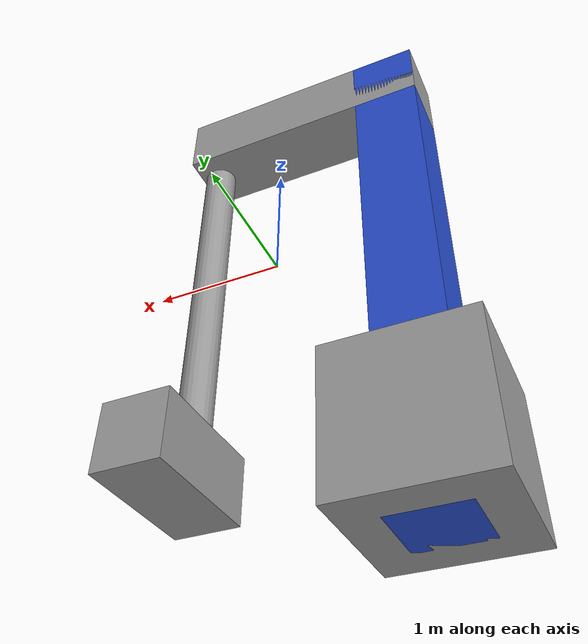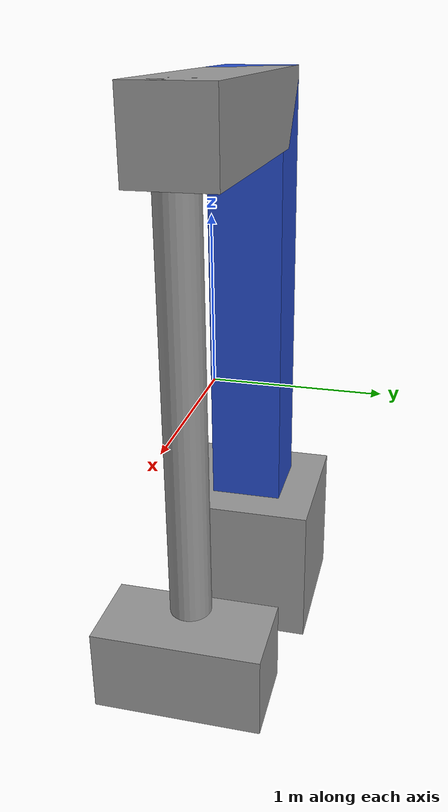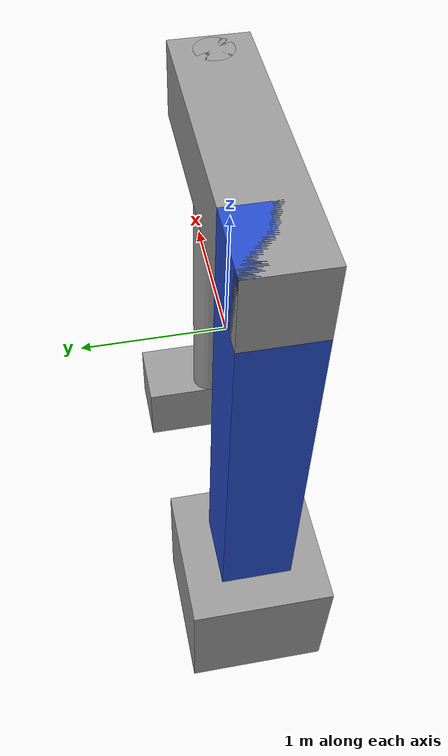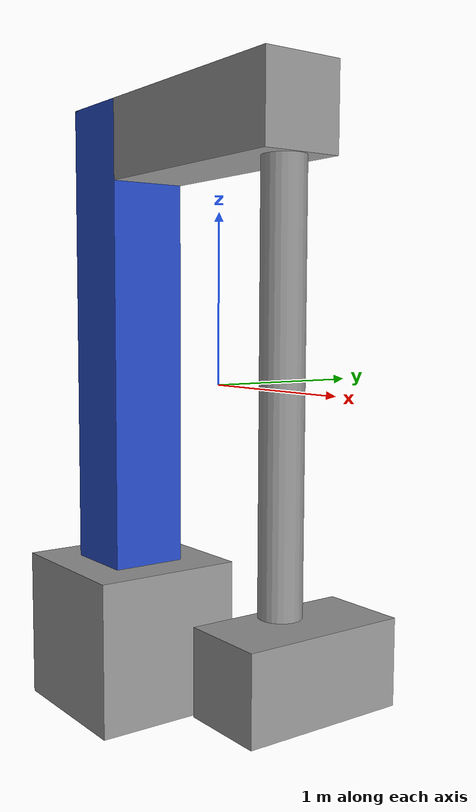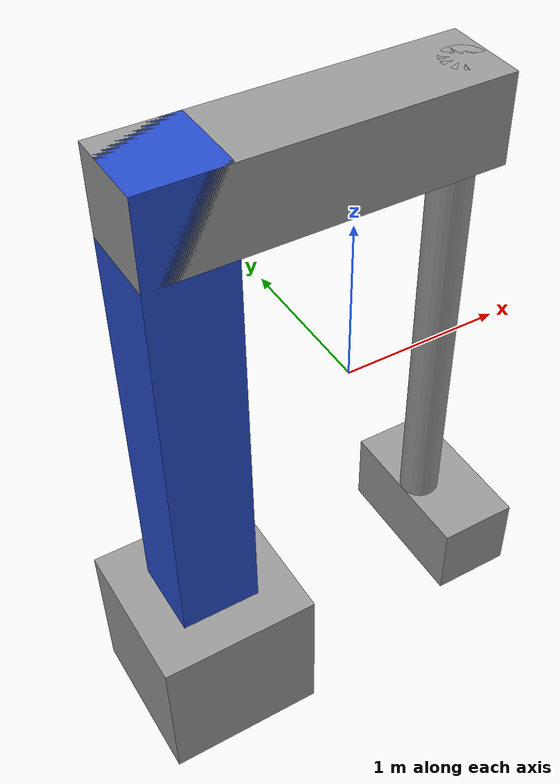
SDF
<?xml version='1.0'?>
<sdf version='1.6'>
  <model name='Ball_Kicker'>
    <link name='link_0'>
      <inertial>
        <mass>1</mass>
        <inertia>
          <ixx>0.166667</ixx>
          <ixy>0</ixy>
          <ixz>0</ixz>
          <iyy>0.166667</iyy>
          <iyz>0</iyz>
          <izz>0.166667</izz>
        </inertia>
        <pose frame=''>0 0 0 0 -0 0</pose>
      </inertial>
      <pose frame=''>-1.02375 0.001875 -0.25 0 -0 0</pose>
      <gravity>1</gravity>
      <self_collide>0</self_collide>
      <kinematic>0</kinematic>
      <enable_wind>0</enable_wind>
      <visual name='visual'>
        <pose frame=''>0 0 0 0 -0 0</pose>
        <geometry>
          <box>
            <size>0.5 0.5 4</size>
          </box>
        </geometry>
        <material>
          <lighting>1</lighting>
          <script>
            <uri>file://media/materials/scripts/gazebo.material</uri>
            <name>Gazebo/Blue</name>
          </script>
          <shader type='vertex'>
            <normal_map>__default__</normal_map>
          </shader>
          <ambient>0.3 0.3 0.3 1</ambient>
          <diffuse>0.7 0.7 0.7 1</diffuse>
          <specular>0.01 0.01 0.01 1</specular>
          <emissive>0 0 0 1</emissive>
        </material>
        <transparency>0</transparency>
        <cast_shadows>1</cast_shadows>
      </visual>
      <collision name='collision'>
        <laser_retro>0</laser_retro>
        <max_contacts>10</max_contacts>
        <pose frame=''>0 0 0 0 -0 0</pose>
        <geometry>
          <box>
            <size>0.5 0.5 4</size>
          </box>
        </geometry>
        <surface>
          <friction>
            <ode>
              <mu>1</mu>
              <mu2>1</mu2>
              <fdir1>0 0 0</fdir1>
              <slip1>0</slip1>
              <slip2>0</slip2>
            </ode>
            <torsional>
              <coefficient>1</coefficient>
              <patch_radius>0</patch_radius>
              <surface_radius>0</surface_radius>
              <use_patch_radius>1</use_patch_radius>
              <ode>
                <slip>0</slip>
              </ode>
            </torsional>
          </friction>
          <bounce>
            <restitution_coefficient>0</restitution_coefficient>
            <threshold>1e+06</threshold>
          </bounce>
          <contact>
            <collide_without_contact>0</collide_without_contact>
            <collide_without_contact_bitmask>1</collide_without_contact_bitmask>
            <collide_bitmask>1</collide_bitmask>
            <ode>
              <soft_cfm>0</soft_cfm>
              <soft_erp>0.2</soft_erp>
              <kp>1e+13</kp>
              <kd>1</kd>
              <max_vel>0.01</max_vel>
              <min_depth>0</min_depth>
            </ode>
            <bullet>
              <split_impulse>1</split_impulse>
              <split_impulse_penetration_threshold>-0.01</split_impulse_penetration_threshold>
              <soft_cfm>0</soft_cfm>
              <soft_erp>0.2</soft_erp>
              <kp>1e+13</kp>
              <kd>1</kd>
            </bullet>
          </contact>
        </surface>
      </collision>
    </link>
    <link name='link_0_0'>
      <inertial>
        <mass>7870</mass>
        <inertia>
          <ixx>1311.67</ixx>
          <ixy>0</ixy>
          <ixz>0</ixz>
          <iyy>1311.67</iyy>
          <iyz>0</iyz>
          <izz>1311.67</izz>
        </inertia>
        <pose frame=''>0 0 0 0 -0 0</pose>
      </inertial>
      <pose frame=''>-1.02375 0.001875 -1.75 0 -0 0</pose>
      <gravity>1</gravity>
      <self_collide>0</self_collide>
      <kinematic>0</kinematic>
      <enable_wind>0</enable_wind>
      <visual name='visual'>
        <pose frame=''>0 0 0 0 -0 0</pose>
        <geometry>
          <box>
            <size>1 1 1</size>
          </box>
        </geometry>
        <material>
          <lighting>1</lighting>
          <script>
            <uri>file://media/materials/scripts/gazebo.material</uri>
            <name>Gazebo/Grey</name>
          </script>
          <shader type='vertex'>
            <normal_map>__default__</normal_map>
          </shader>
          <emissive>0 0 0 1</emissive>
        </material>
        <transparency>0</transparency>
        <cast_shadows>1</cast_shadows>
      </visual>
      <collision name='collision'>
        <laser_retro>0</laser_retro>
        <max_contacts>10</max_contacts>
        <pose frame=''>0 0 0 0 -0 0</pose>
        <geometry>
          <box>
            <size>1 1 1</size>
          </box>
        </geometry>
        <surface>
          <friction>
            <ode>
              <mu>1</mu>
              <mu2>1</mu2>
              <fdir1>0 0 0</fdir1>
              <slip1>0</slip1>
              <slip2>0</slip2>
            </ode>
            <torsional>
              <coefficient>1</coefficient>
              <patch_radius>0</patch_radius>
              <surface_radius>0</surface_radius>
              <use_patch_radius>1</use_patch_radius>
              <ode>
                <slip>0</slip>
              </ode>
            </torsional>
          </friction>
          <bounce>
            <restitution_coefficient>0</restitution_coefficient>
            <threshold>1e+06</threshold>
          </bounce>
          <contact>
            <collide_without_contact>0</collide_without_contact>
            <collide_without_contact_bitmask>1</collide_without_contact_bitmask>
            <collide_bitmask>1</collide_bitmask>
            <ode>
              <soft_cfm>0</soft_cfm>
              <soft_erp>0.2</soft_erp>
              <kp>1e+13</kp>
              <kd>1</kd>
              <max_vel>0.01</max_vel>
              <min_depth>0</min_depth>
            </ode>
            <bullet>
              <split_impulse>1</split_impulse>
              <split_impulse_penetration_threshold>-0.01</split_impulse_penetration_threshold>
              <soft_cfm>0</soft_cfm>
              <soft_erp>0.2</soft_erp>
              <kp>1e+13</kp>
              <kd>1</kd>
            </bullet>
          </contact>
        </surface>
      </collision>
    </link>
    <link name='link_1'>
      <inertial>
        <mass>1</mass>
        <inertia>
          <ixx>0.166667</ixx>
          <ixy>0</ixy>
          <ixz>0</ixz>
          <iyy>0.166667</iyy>
          <iyz>0</iyz>
          <izz>0.166667</izz>
        </inertia>
        <pose frame=''>0 0 0 0 -0 0</pose>
      </inertial>
      <pose frame=''>-0.273752 0.001875 1.5 0 -0 0</pose>
      <gravity>1</gravity>
      <self_collide>0</self_collide>
      <kinematic>0</kinematic>
      <enable_wind>0</enable_wind>
      <visual name='visual'>
        <pose frame=''>0 0 0 0 -0 0</pose>
        <geometry>
          <box>
            <size>2 0.5 0.5</size>
          </box>
        </geometry>
        <material>
          <lighting>1</lighting>
          <script>
            <uri>file://media/materials/scripts/gazebo.material</uri>
            <name>Gazebo/Grey</name>
          </script>
          <shader type='vertex'>
            <normal_map>__default__</normal_map>
          </shader>
          <ambient>0.3 0.3 0.3 1</ambient>
          <diffuse>0.7 0.7 0.7 1</diffuse>
          <specular>0.01 0.01 0.01 1</specular>
          <emissive>0 0 0 1</emissive>
        </material>
        <transparency>0</transparency>
        <cast_shadows>1</cast_shadows>
      </visual>
      <collision name='collision'>
        <laser_retro>0</laser_retro>
        <max_contacts>10</max_contacts>
        <pose frame=''>0 0 0 0 -0 0</pose>
        <geometry>
          <box>
            <size>2 0.5 0.5</size>
          </box>
        </geometry>
        <surface>
          <friction>
            <ode>
              <mu>1</mu>
              <mu2>1</mu2>
              <fdir1>0 0 0</fdir1>
              <slip1>0</slip1>
              <slip2>0</slip2>
            </ode>
            <torsional>
              <coefficient>1</coefficient>
              <patch_radius>0</patch_radius>
              <surface_radius>0</surface_radius>
              <use_patch_radius>1</use_patch_radius>
              <ode>
                <slip>0</slip>
              </ode>
            </torsional>
          </friction>
          <bounce>
            <restitution_coefficient>0</restitution_coefficient>
            <threshold>1e+06</threshold>
          </bounce>
          <contact>
            <collide_without_contact>0</collide_without_contact>
            <collide_without_contact_bitmask>1</collide_without_contact_bitmask>
            <collide_bitmask>1</collide_bitmask>
            <ode>
              <soft_cfm>0</soft_cfm>
              <soft_erp>0.2</soft_erp>
              <kp>1e+13</kp>
              <kd>1</kd>
              <max_vel>0.01</max_vel>
              <min_depth>0</min_depth>
            </ode>
            <bullet>
              <split_impulse>1</split_impulse>
              <split_impulse_penetration_threshold>-0.01</split_impulse_penetration_threshold>
              <soft_cfm>0</soft_cfm>
              <soft_erp>0.2</soft_erp>
              <kp>1e+13</kp>
              <kd>1</kd>
            </bullet>
          </contact>
        </surface>
      </collision>
    </link>
    <link name='link_2'>
      <inertial>
        <mass>1</mass>
        <inertia>
          <ixx>0.145833</ixx>
          <ixy>0</ixy>
          <ixz>0</ixz>
          <iyy>0.145833</iyy>
          <iyz>0</iyz>
          <izz>0.125</izz>
        </inertia>
        <pose frame=''>0 0 0 0 -0 0</pose>
      </inertial>
      <pose frame=''>0.586248 -0.005625 0.25 0 -0 0</pose>
      <gravity>1</gravity>
      <self_collide>0</self_collide>
      <kinematic>0</kinematic>
      <enable_wind>0</enable_wind>
      <visual name='visual'>
        <pose frame=''>0 0 0 0 -0 0</pose>
        <geometry>
          <cylinder>
            <radius>0.125</radius>
            <length>3</length>
          </cylinder>
        </geometry>
        <material>
          <lighting>1</lighting>
          <script>
            <uri>file://media/materials/scripts/gazebo.material</uri>
            <name>Gazebo/Grey</name>
          </script>
          <shader type='vertex'>
            <normal_map>__default__</normal_map>
          </shader>
          <ambient>0.3 0.3 0.3 1</ambient>
          <diffuse>0.7 0.7 0.7 1</diffuse>
          <specular>0.01 0.01 0.01 1</specular>
          <emissive>0 0 0 1</emissive>
        </material>
        <transparency>0</transparency>
        <cast_shadows>1</cast_shadows>
      </visual>
      <collision name='collision'>
        <laser_retro>0</laser_retro>
        <max_contacts>10</max_contacts>
        <pose frame=''>0 0 0 0 -0 0</pose>
        <geometry>
          <cylinder>
            <radius>0.125</radius>
            <length>3</length>
          </cylinder>
        </geometry>
        <surface>
          <friction>
            <ode>
              <mu>1</mu>
              <mu2>1</mu2>
              <fdir1>0 0 0</fdir1>
              <slip1>0</slip1>
              <slip2>0</slip2>
            </ode>
            <torsional>
              <coefficient>1</coefficient>
              <patch_radius>0</patch_radius>
              <surface_radius>0</surface_radius>
              <use_patch_radius>1</use_patch_radius>
              <ode>
                <slip>0</slip>
              </ode>
            </torsional>
          </friction>
          <bounce>
            <restitution_coefficient>0</restitution_coefficient>
            <threshold>1e+06</threshold>
          </bounce>
          <contact>
            <collide_without_contact>0</collide_without_contact>
            <collide_without_contact_bitmask>1</collide_without_contact_bitmask>
            <collide_bitmask>1</collide_bitmask>
            <ode>
              <soft_cfm>0</soft_cfm>
              <soft_erp>0.2</soft_erp>
              <kp>1e+13</kp>
              <kd>1</kd>
              <max_vel>0.01</max_vel>
              <min_depth>0</min_depth>
            </ode>
            <bullet>
              <split_impulse>1</split_impulse>
              <split_impulse_penetration_threshold>-0.01</split_impulse_penetration_threshold>
              <soft_cfm>0</soft_cfm>
              <soft_erp>0.2</soft_erp>
              <kp>1e+13</kp>
              <kd>1</kd>
            </bullet>
          </contact>
        </surface>
      </collision>
    </link>
    <link name='link_3'>
      <inertial>
        <mass>1</mass>
        <inertia>
          <ixx>0.166667</ixx>
          <ixy>0</ixy>
          <ixz>0</ixz>
          <iyy>0.166667</iyy>
          <iyz>0</iyz>
          <izz>0.166667</izz>
        </inertia>
        <pose frame=''>0 0 0 0 -0 0</pose>
      </inertial>
      <pose frame=''>0.711248 0.001875 -1.5 0 -0 0</pose>
      <gravity>1</gravity>
      <self_collide>0</self_collide>
      <kinematic>0</kinematic>
      <enable_wind>0</enable_wind>
      <visual name='visual'>
        <pose frame=''>0 0 0 0 -0 0</pose>
        <geometry>
          <box>
            <size>0.5 1 0.5</size>
          </box>
        </geometry>
        <material>
          <lighting>1</lighting>
          <script>
            <uri>file://media/materials/scripts/gazebo.material</uri>
            <name>Gazebo/Grey</name>
          </script>
          <shader type='vertex'>
            <normal_map>__default__</normal_map>
          </shader>
          <ambient>0.3 0.3 0.3 1</ambient>
          <diffuse>0.7 0.7 0.7 1</diffuse>
          <specular>0.01 0.01 0.01 1</specular>
          <emissive>0 0 0 1</emissive>
        </material>
        <transparency>0</transparency>
        <cast_shadows>1</cast_shadows>
      </visual>
      <collision name='collision'>
        <laser_retro>0</laser_retro>
        <max_contacts>10</max_contacts>
        <pose frame=''>0 0 0 0 -0 0</pose>
        <geometry>
          <box>
            <size>0.5 1 0.5</size>
          </box>
        </geometry>
        <surface>
          <friction>
            <ode>
              <mu>1</mu>
              <mu2>1</mu2>
              <fdir1>0 0 0</fdir1>
              <slip1>0</slip1>
              <slip2>0</slip2>
            </ode>
            <torsional>
              <coefficient>1</coefficient>
              <patch_radius>0</patch_radius>
              <surface_radius>0</surface_radius>
              <use_patch_radius>1</use_patch_radius>
              <ode>
                <slip>0</slip>
              </ode>
            </torsional>
          </friction>
          <bounce>
            <restitution_coefficient>0</restitution_coefficient>
            <threshold>1e+06</threshold>
          </bounce>
          <contact>
            <collide_without_contact>0</collide_without_contact>
            <collide_without_contact_bitmask>1</collide_without_contact_bitmask>
            <collide_bitmask>1</collide_bitmask>
            <ode>
              <soft_cfm>0</soft_cfm>
              <soft_erp>0.2</soft_erp>
              <kp>1e+13</kp>
              <kd>1</kd>
              <max_vel>0.01</max_vel>
              <min_depth>0</min_depth>
            </ode>
            <bullet>
              <split_impulse>1</split_impulse>
              <split_impulse_penetration_threshold>-0.01</split_impulse_penetration_threshold>
              <soft_cfm>0</soft_cfm>
              <soft_erp>0.2</soft_erp>
              <kp>1e+13</kp>
              <kd>1</kd>
            </bullet>
          </contact>
        </surface>
      </collision>
    </link>
    <joint name='link_0_JOINT_0_0' type='fixed'>
      <parent>link_0</parent>
      <child>link_0_0</child>
      <pose frame=''>0 0 0 0 -0 0</pose>
      <physics>
        <ode>
          <limit>
            <cfm>0</cfm>
            <erp>0.2</erp>
          </limit>
          <suspension>
            <cfm>0</cfm>
            <erp>0.2</erp>
          </suspension>
        </ode>
      </physics>
    </joint>
    <joint name='link_0_JOINT_0' type='fixed'>
      <parent>link_0</parent>
      <child>link_1</child>
      <pose frame=''>0 0 0 0 -0 0</pose>
      <physics>
        <ode>
          <limit>
            <cfm>0</cfm>
            <erp>0.2</erp>
          </limit>
          <suspension>
            <cfm>0</cfm>
            <erp>0.2</erp>
          </suspension>
        </ode>
      </physics>
    </joint>
    <joint name='link_1_JOINT_1' type='revolute'>
      <parent>link_1</parent>
      <child>link_2</child>
      <pose frame=''>0 0 1.25 0 -0 0</pose>
      <axis>
        <xyz>1 0 0</xyz>
        <use_parent_model_frame>0</use_parent_model_frame>
        <limit>
          <lower>-1.79769e+308</lower>
          <upper>1.79769e+308</upper>
          <effort>-1</effort>
          <velocity>-1</velocity>
        </limit>
        <dynamics>
          <spring_reference>0</spring_reference>
          <spring_stiffness>0</spring_stiffness>
          <damping>0</damping>
          <friction>0</friction>
        </dynamics>
      </axis>
      <physics>
        <ode>
          <limit>
            <cfm>0</cfm>
            <erp>0.2</erp>
          </limit>
          <suspension>
            <cfm>0</cfm>
            <erp>0.2</erp>
          </suspension>
        </ode>
      </physics>
    </joint>
    <joint name='link_2_JOINT_2' type='fixed'>
      <parent>link_2</parent>
      <child>link_3</child>
      <pose frame=''>0 0 0 0 -0 0</pose>
      <physics>
        <ode>
          <limit>
            <cfm>0</cfm>
            <erp>0.2</erp>
          </limit>
          <suspension>
            <cfm>0</cfm>
            <erp>0.2</erp>
          </suspension>
        </ode>
      </physics>
    </joint>
    <static>0</static>
    <allow_auto_disable>1</allow_auto_disable>
  </model>
</sdf>
